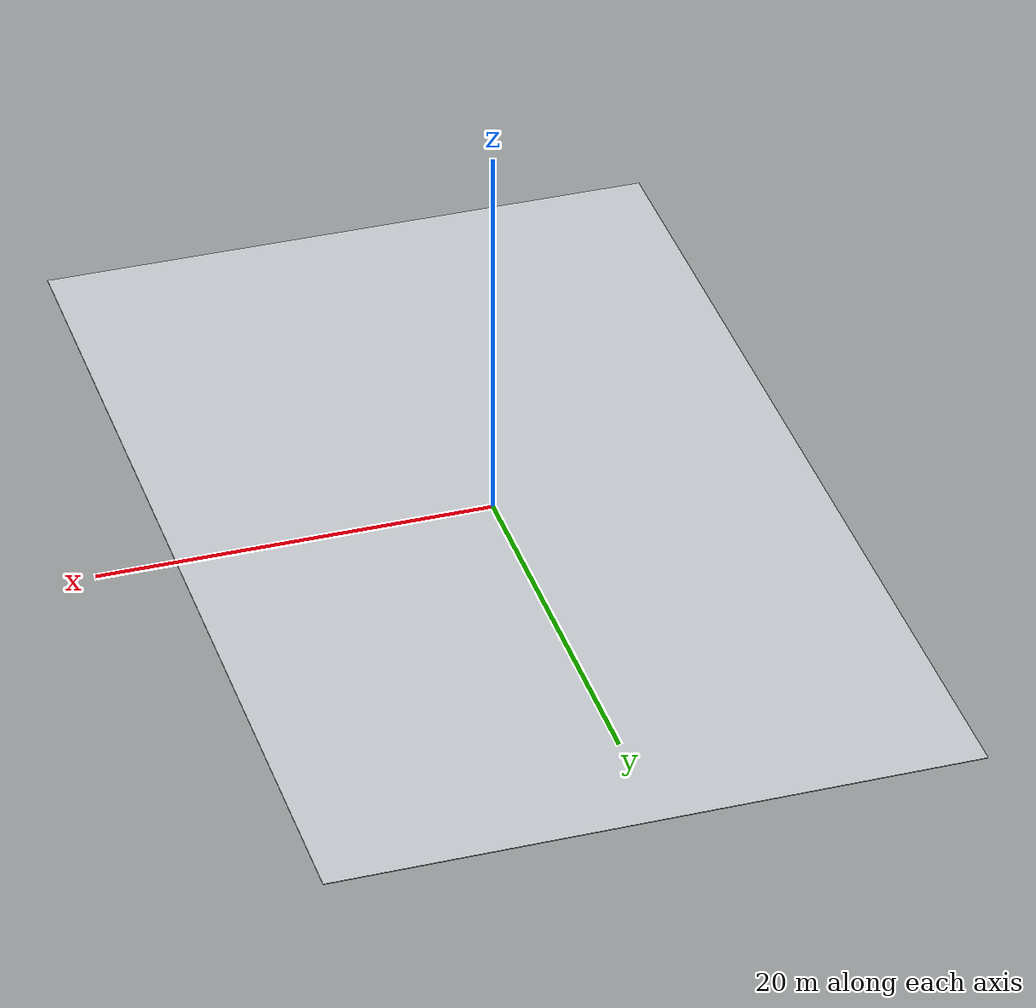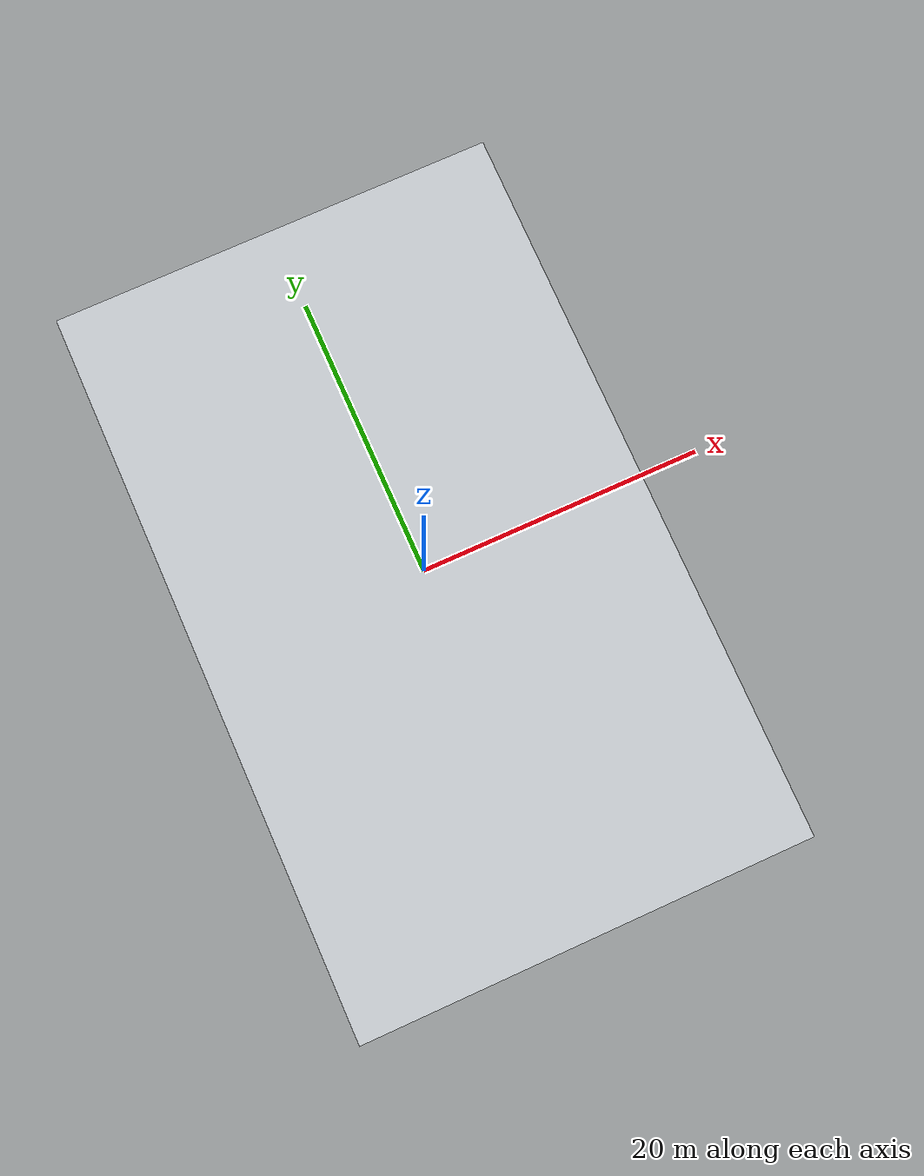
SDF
<?xml version='1.0' encoding='utf-8'?>
<sdf version="1.6">
  <model name="aws_robomaker_hospital_floor_01_floor">
    <static>true</static>
    <link name="link">
      <collision name="collision_1">
        <geometry>
          <box>
            <size>32 52 0.04</size>
          </box>
        </geometry>
      </collision>
      <visual name="visual_1">
        <geometry>
          <box>
            <size>32 52 0.04</size>
          </box>
        </geometry>
        <material>
          <ambient>0.8 0.82 0.84 1</ambient>
          <diffuse>0.8 0.82 0.84 1</diffuse>
          <specular>0.08 0.08 0.08 1</specular>
        </material>
      </visual>
    </link>
  </model>
</sdf>
